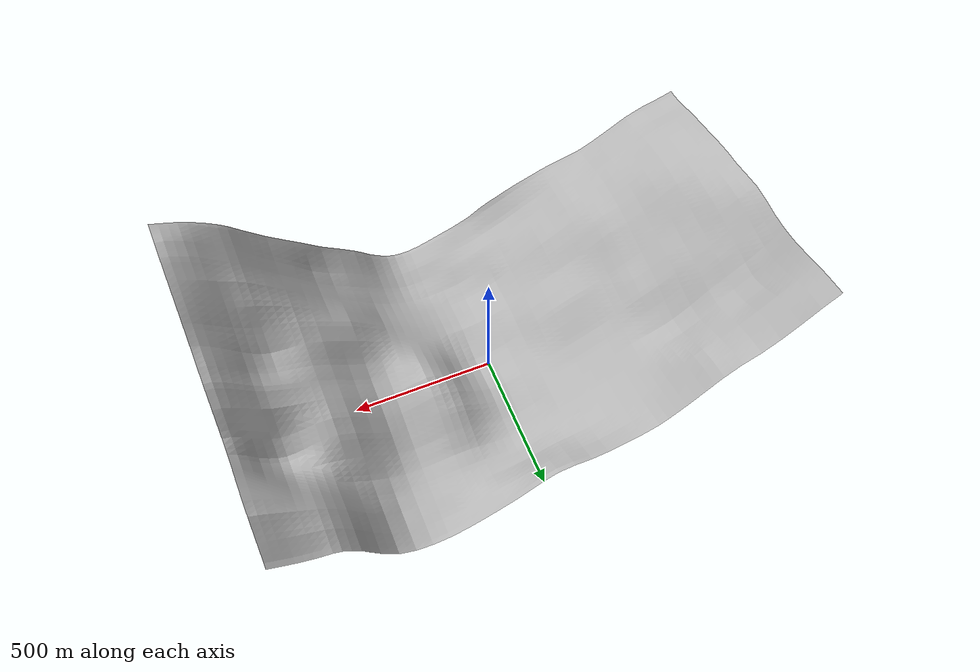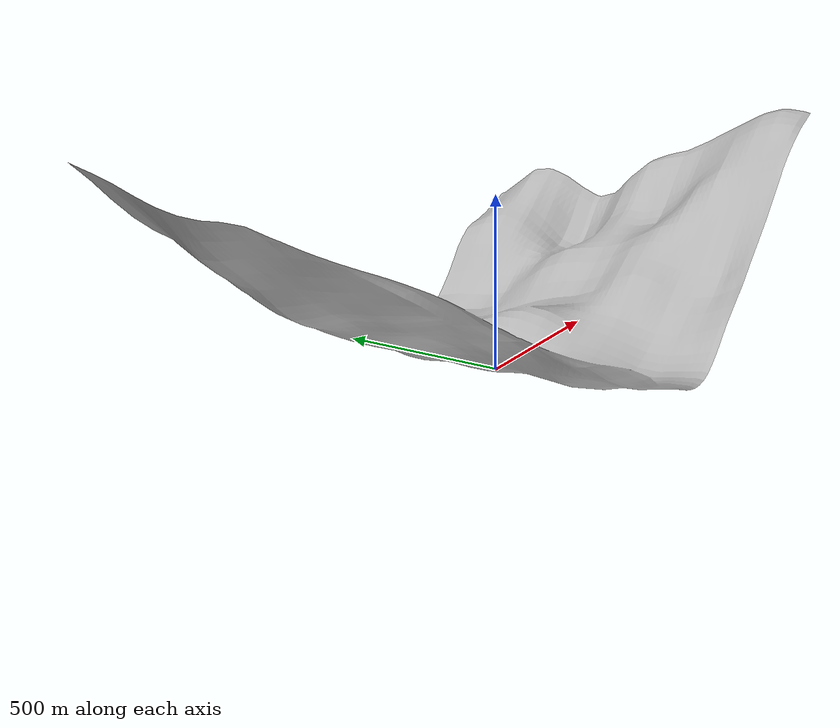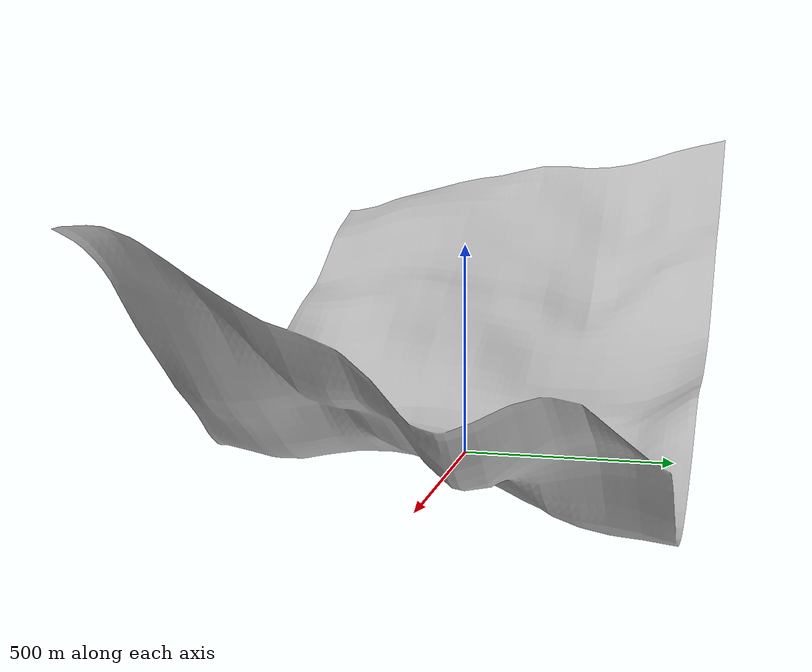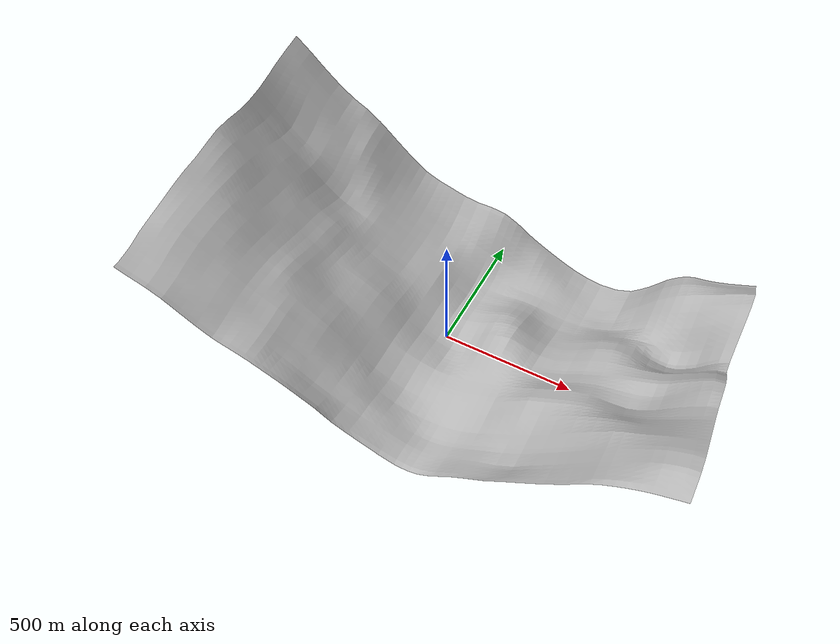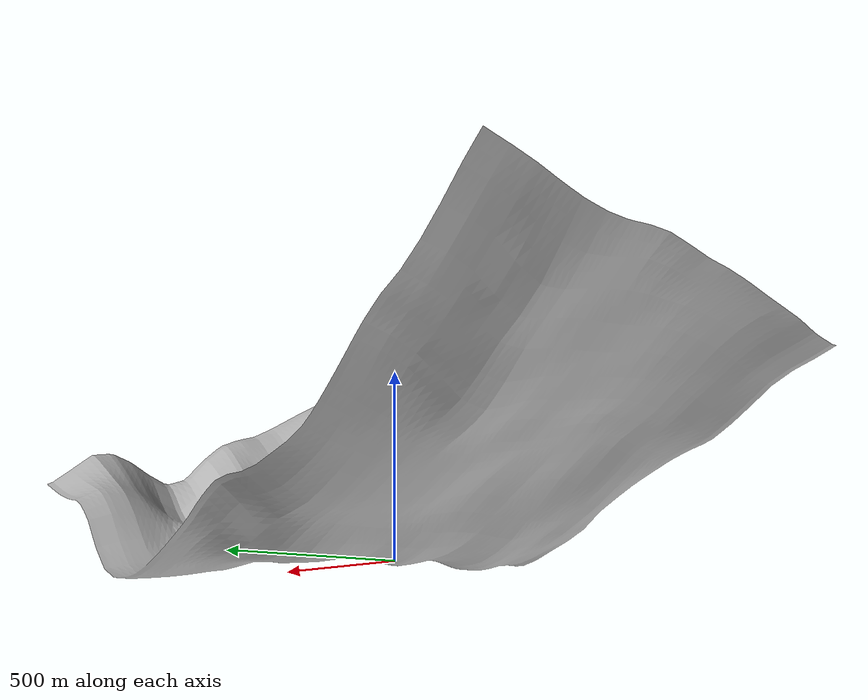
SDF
<?xml version="1.0" ?>
<sdf version="1.4">
  <model name="v2">
	<static>true</static>
	<link name="link">
	  <pose>0 0 20.5 0 0 0</pose>
	    <collision name="my_collision">
		<geometry>
                   <mesh><uri>model://v2/untitled.dae</uri></mesh>
		 </geometry>
	    </collision>

	    <visual name="my_visual">
		<geometry>
                   <mesh><uri>model://v2/untitled.dae</uri></mesh>
		 </geometry>
	    </visual>
	</link>
    </model>
</sdf>
